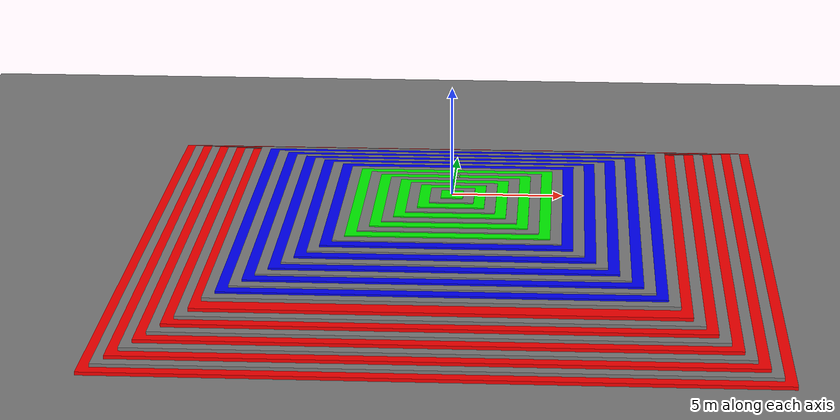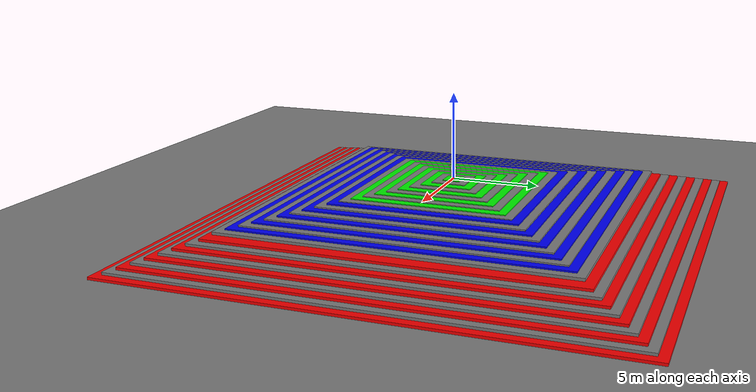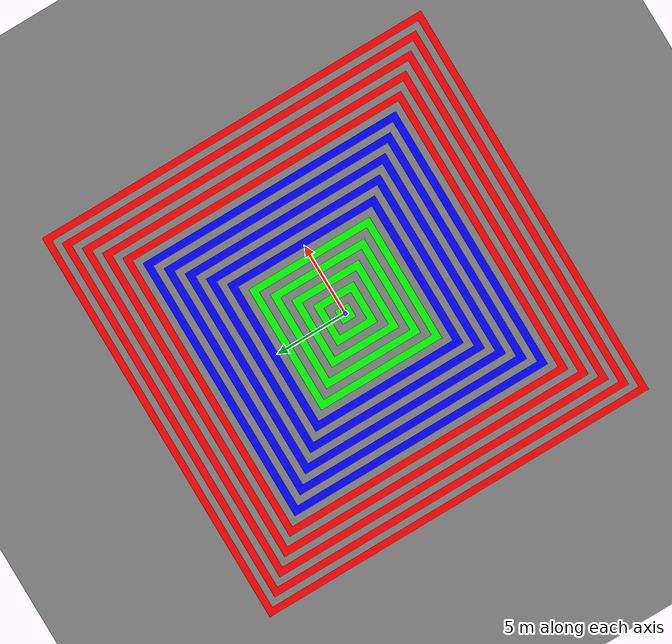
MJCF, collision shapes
<mujoco model="g1 scene modified">
  <include file="g1_12dof_modified.xml"/>

  <statistic center="1.0 0.7 1.0" extent="0.8"/>

  <visual>
    <headlight diffuse="0.6 0.6 0.6" ambient="0.1 0.1 0.1" specular="0.9 0.9 0.9"/>
    <rgba haze="0.15 0.25 0.35 1"/>
    <global azimuth="-140" elevation="-20"/>
  </visual>

  <asset>
    <texture type="skybox" builtin="flat" rgb1="0 0 0" rgb2="0 0 0" width="512" height="3072"/>
    <texture type="2d" name="groundplane" builtin="checker" mark="edge" rgb1="0.2 0.3 0.4" rgb2="0.1 0.2 0.3" markrgb="0.8 0.8 0.8" width="300" height="300"/>
    <material name="groundplane" texture="groundplane" texuniform="true" texrepeat="5 5" reflectance="0.2"/>

    <material name="color_stair_default" rgba="0.5 0.5 0.5 1"/>
    <material name="color_stair_simple" rgba="0.0 1.0 0.0 1"/>
    <material name="color_stair_medium" rgba="0.0 0.0 1.0 1"/>
    <material name="color_stair_hard" rgba="1.0 0.0 0.0 1"/>
  </asset>

  <worldbody>
    <light pos="1 0 3.5" dir="0 0 -1" directional="true"/>

    <geom type="box" size="0.5 0.5 0.05" pos="0 0 -0.05" euler="0 0 0" material="color_stair_simple" />
    <geom type="box" size="1.0 1.0 0.05" pos="0 0 -0.10" euler="0 0 0" material="color_stair_default" />
    <geom type="box" size="1.5 1.5 0.05" pos="0 0 -0.15" euler="0 0 0" material="color_stair_simple" />
    <geom type="box" size="2.0 2.0 0.05" pos="0 0 -0.20" euler="0 0 0" material="color_stair_default" />
    <geom type="box" size="2.5 2.5 0.05" pos="0 0 -0.25" euler="0 0 0" material="color_stair_simple" />
    <geom type="box" size="3.0 3.0 0.05" pos="0 0 -0.30" euler="0 0 0" material="color_stair_default" />
    <geom type="box" size="3.5 3.5 0.05" pos="0 0 -0.35" euler="0 0 0" material="color_stair_simple" />
    <geom type="box" size="4.0 4.0 0.05" pos="0 0 -0.40" euler="0 0 0" material="color_stair_default" />
    <geom type="box" size="4.5 4.5 0.05" pos="0 0 -0.45" euler="0 0 0" material="color_stair_simple" />
    <geom type="box" size="5.0 5.0 0.05" pos="0 0 -0.50" euler="0 0 0" material="color_stair_default" />
    <geom type="box" size="5.5 5.5 0.08" pos="0 0 -0.58" euler="0 0 0" material="color_stair_medium" />
    <geom type="box" size="6.0 6.0 0.08" pos="0 0 -0.66" euler="0 0 0" material="color_stair_default" />
    <geom type="box" size="6.5 6.5 0.08" pos="0 0 -0.74" euler="0 0 0" material="color_stair_medium" />
    <geom type="box" size="7.0 7.0 0.08" pos="0 0 -0.82" euler="0 0 0" material="color_stair_default" />
    <geom type="box" size="7.5 7.5 0.08" pos="0 0 -0.90" euler="0 0 0" material="color_stair_medium" />
    <geom type="box" size="8.0 8.0 0.08" pos="0 0 -0.98" euler="0 0 0" material="color_stair_default" />
    <geom type="box" size="8.5 8.5 0.08" pos="0 0 -1.06" euler="0 0 0" material="color_stair_medium" />
    <geom type="box" size="9.0 9.0 0.08" pos="0 0 -1.14" euler="0 0 0" material="color_stair_default" />
    <geom type="box" size="9.5 9.5 0.08" pos="0 0 -1.22" euler="0 0 0" material="color_stair_medium" />
    <geom type="box" size="10.0 10.0 0.08" pos="0 0 -1.30" euler="0 0 0" material="color_stair_default" />
    <geom type="box" size="10.5 10.5 0.15" pos="0 0 -1.65" euler="0 0 0" material="color_stair_hard" />
    <geom type="box" size="11.0 11.0 0.15" pos="0 0 -1.80" euler="0 0 0" material="color_stair_default" />
    <geom type="box" size="11.5 11.5 0.15" pos="0 0 -1.95" euler="0 0 0" material="color_stair_hard" />
    <geom type="box" size="12.0 12.0 0.15" pos="0 0 -2.10" euler="0 0 0" material="color_stair_default" />
    <geom type="box" size="12.5 12.5 0.15" pos="0 0 -2.25" euler="0 0 0" material="color_stair_hard" />
    <geom type="box" size="13.0 13.0 0.15" pos="0 0 -2.40" euler="0 0 0" material="color_stair_default" />
    <geom type="box" size="13.5 13.5 0.15" pos="0 0 -2.55" euler="0 0 0" material="color_stair_hard" />
    <geom type="box" size="14.0 14.0 0.15" pos="0 0 -2.70" euler="0 0 0" material="color_stair_default" />
    <geom type="box" size="14.5 14.5 0.15" pos="0 0 -2.85" euler="0 0 0" material="color_stair_hard" />
    <geom type="box" size="100.0 100.0 0.15" pos="0 0 -3.00" euler="0 0 0" material="color_stair_default" />
  </worldbody>
</mujoco>

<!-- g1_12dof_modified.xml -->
<mujoco model="g1_12dof_modified">
  <compiler angle="radian" meshdir="meshes/"/>

  <statistic meansize="0.144785" extent="1.23314" center="0.025392 2.0634e-05 -0.245975"/>
  <default>
    <joint damping="0.001" armature="0.01" frictionloss="0.1"/>
  </default>

  <asset>
    <mesh name="pelvis" file="pelvis.STL"/>
    <mesh name="pelvis_contour_link" file="pelvis_contour_link.STL"/>
    <mesh name="left_hip_pitch_link" file="left_hip_pitch_link.STL"/>
    <mesh name="left_hip_roll_link" file="left_hip_roll_link.STL"/>
    <mesh name="left_hip_yaw_link" file="left_hip_yaw_link.STL"/>
    <mesh name="left_knee_link" file="left_knee_link.STL"/>
    <mesh name="left_ankle_pitch_link" file="left_ankle_pitch_link.STL"/>
    <mesh name="left_ankle_roll_link" file="left_ankle_roll_link.STL"/>
    <mesh name="right_hip_pitch_link" file="right_hip_pitch_link.STL"/>
    <mesh name="right_hip_roll_link" file="right_hip_roll_link.STL"/>
    <mesh name="right_hip_yaw_link" file="right_hip_yaw_link.STL"/>
    <mesh name="right_knee_link" file="right_knee_link.STL"/>
    <mesh name="right_ankle_pitch_link" file="right_ankle_pitch_link.STL"/>
    <mesh name="right_ankle_roll_link" file="right_ankle_roll_link.STL"/>
    <mesh name="torso_link_23dof_rev_1_0" file="torso_link_23dof_rev_1_0.STL"/>
    <mesh name="logo_link" file="logo_link.STL"/>
    <mesh name="head_link" file="head_link.STL"/>
    <mesh name="left_shoulder_pitch_link" file="left_shoulder_pitch_link.STL"/>
    <mesh name="left_shoulder_roll_link" file="left_shoulder_roll_link.STL"/>
    <mesh name="left_shoulder_yaw_link" file="left_shoulder_yaw_link.STL"/>
    <mesh name="left_elbow_link" file="left_elbow_link.STL"/>
    <mesh name="left_wrist_roll_rubber_hand" file="left_wrist_roll_rubber_hand.STL"/>
    <mesh name="right_shoulder_pitch_link" file="right_shoulder_pitch_link.STL"/>
    <mesh name="right_shoulder_roll_link" file="right_shoulder_roll_link.STL"/>
    <mesh name="right_shoulder_yaw_link" file="right_shoulder_yaw_link.STL"/>
    <mesh name="right_elbow_link" file="right_elbow_link.STL"/>
    <mesh name="right_wrist_roll_rubber_hand" file="right_wrist_roll_rubber_hand.STL"/>
  </asset>

  <worldbody>
    <body name="pelvis" pos="0 0 0.793">
      <inertial pos="0.0144905 0.000151462 0.144068" quat="0.999881 -0.000505543 -0.0154276 0.000328408" mass="17.7349" diaginertia="0.552723 0.454092 0.211762"/>
      <joint name="floating_base_joint" type="free" limited="false" actuatorfrclimited="false"/>
      <geom type="mesh" contype="0" conaffinity="0" group="1" density="0" rgba="0.2 0.2 0.2 1" mesh="pelvis"/>
      <geom type="mesh" contype="0" conaffinity="0" group="1" density="0" rgba="0.7 0.7 0.7 1" mesh="pelvis_contour_link"/>
      <geom type="mesh" rgba="0.7 0.7 0.7 1" mesh="pelvis_contour_link"/>
      <geom type="mesh" contype="0" conaffinity="0" group="1" density="0" rgba="0.7 0.7 0.7 1" mesh="torso_link_23dof_rev_1_0"/>
      <geom type="mesh" rgba="0.7 0.7 0.7 1" mesh="torso_link_23dof_rev_1_0"/>
      <geom type="mesh" contype="0" conaffinity="0" group="1" density="0" rgba="0.2 0.2 0.2 1" mesh="logo_link"/>
      <geom type="mesh" rgba="0.2 0.2 0.2 1" mesh="logo_link"/>
      <geom type="mesh" contype="0" conaffinity="0" group="1" density="0" rgba="0.2 0.2 0.2 1" mesh="head_link"/>
      <geom type="mesh" rgba="0.2 0.2 0.2 1" mesh="head_link"/>
      <geom pos="-7.2e-06 0.10022 0.29178" quat="0.990264 0.139201 1.38722e-05 -9.86868e-05" type="mesh" contype="0" conaffinity="0" group="1" density="0" rgba="0.7 0.7 0.7 1" mesh="left_shoulder_pitch_link"/>
      <geom size="0.03 0.025" pos="7.72569e-07 0.141427 0.293195" quat="0.700213 0.0985001 0.700232 0.0983605" type="cylinder" rgba="0.7 0.7 0.7 1"/>
      <geom pos="3.73942e-07 0.14056 0.288961" quat="1 3.00026e-05 2.74716e-05 -9.57958e-05" type="mesh" contype="0" conaffinity="0" group="1" density="0" rgba="0.7 0.7 0.7 1" mesh="left_shoulder_roll_link"/>
      <geom size="0.03 0.015" pos="-0.00400139 0.146564 0.235962" quat="1 3.00026e-05 2.74716e-05 -9.57958e-05" type="cylinder" rgba="0.7 0.7 0.7 1"/>
      <geom pos="-4.10007e-06 0.146807 0.185762" quat="1 3.00026e-05 2.74716e-05 -9.57958e-05" type="mesh" contype="0" conaffinity="0" group="1" density="0" rgba="0.7 0.7 0.7 1" mesh="left_shoulder_yaw_link"/>
      <geom pos="-4.10007e-06 0.146807 0.185762" quat="1 3.00026e-05 2.74716e-05 -9.57958e-05" type="mesh" rgba="0.7 0.7 0.7 1" mesh="left_shoulder_yaw_link"/>
      <geom pos="0.0157745 0.146808 0.105243" quat="1 3.00026e-05 2.74716e-05 -9.57958e-05" type="mesh" contype="0" conaffinity="0" group="1" density="0" rgba="0.7 0.7 0.7 1" mesh="left_elbow_link"/>
      <geom pos="0.0157745 0.146808 0.105243" quat="1 3.00026e-05 2.74716e-05 -9.57958e-05" type="mesh" rgba="0.7 0.7 0.7 1" mesh="left_elbow_link"/>
      <geom pos="0.115774 0.148678 0.0952374" quat="1 3.00026e-05 2.74716e-05 -9.57958e-05" type="mesh" contype="0" conaffinity="0" group="1" density="0" rgba="0.7 0.7 0.7 1" mesh="left_wrist_roll_rubber_hand"/>
      <geom pos="0.115774 0.148678 0.0952374" quat="1 3.00026e-05 2.74716e-05 -9.57958e-05" type="mesh" rgba="0.7 0.7 0.7 1" mesh="left_wrist_roll_rubber_hand"/>
      <geom pos="-7.2e-06 -0.10021 0.29178" quat="0.990264 -0.139201 1.38722e-05 9.86868e-05" type="mesh" contype="0" conaffinity="0" group="1" density="0" rgba="0.7 0.7 0.7 1" mesh="right_shoulder_pitch_link"/>
      <geom size="0.03 0.025" pos="7.72569e-07 -0.141417 0.293195" quat="0.700213 -0.0985001 0.700232 -0.0983605" type="cylinder" rgba="0.7 0.7 0.7 1"/>
      <geom pos="3.73942e-07 -0.14055 0.288961" quat="1 -3.00026e-05 2.74716e-05 9.57958e-05" type="mesh" contype="0" conaffinity="0" group="1" density="0" rgba="0.7 0.7 0.7 1" mesh="right_shoulder_roll_link"/>
      <geom size="0.03 0.015" pos="-0.00400139 -0.146554 0.235962" quat="1 -3.00026e-05 2.74716e-05 9.57958e-05" type="cylinder" rgba="0.7 0.7 0.7 1"/>
      <geom pos="-4.10007e-06 -0.146797 0.185762" quat="1 -3.00026e-05 2.74716e-05 9.57958e-05" type="mesh" contype="0" conaffinity="0" group="1" density="0" rgba="0.7 0.7 0.7 1" mesh="right_shoulder_yaw_link"/>
      <geom pos="-4.10007e-06 -0.146797 0.185762" quat="1 -3.00026e-05 2.74716e-05 9.57958e-05" type="mesh" rgba="0.7 0.7 0.7 1" mesh="right_shoulder_yaw_link"/>
      <geom pos="0.0157745 -0.146798 0.105243" quat="1 -3.00026e-05 2.74716e-05 9.57958e-05" type="mesh" contype="0" conaffinity="0" group="1" density="0" rgba="0.7 0.7 0.7 1" mesh="right_elbow_link"/>
      <geom pos="0.0157745 -0.146798 0.105243" quat="1 -3.00026e-05 2.74716e-05 9.57958e-05" type="mesh" rgba="0.7 0.7 0.7 1" mesh="right_elbow_link"/>
      <geom pos="0.115774 -0.148668 0.0952374" quat="1 -3.00026e-05 2.74716e-05 9.57958e-05" type="mesh" contype="0" conaffinity="0" group="1" density="0" rgba="0.7 0.7 0.7 1" mesh="right_wrist_roll_rubber_hand"/>
      <geom pos="0.115774 -0.148668 0.0952374" quat="1 -3.00026e-05 2.74716e-05 9.57958e-05" type="mesh" rgba="0.7 0.7 0.7 1" mesh="right_wrist_roll_rubber_hand"/>
      <body name="left_hip_pitch_link" pos="0 0.064452 -0.1027">
        <inertial pos="0.002741 0.047791 -0.02606" quat="0.954862 0.293964 0.0302556 0.030122" mass="1.35" diaginertia="0.00181517 0.00153422 0.00116212"/>
        <joint name="left_hip_pitch_joint" pos="0 0 0" axis="0 1 0" range="-2.5307 2.8798" actuatorfrcrange="-88 88"/>
        <geom type="mesh" contype="0" conaffinity="0" group="1" density="0" rgba="0.2 0.2 0.2 1" mesh="left_hip_pitch_link"/>
        <geom type="mesh" rgba="0.2 0.2 0.2 1" mesh="left_hip_pitch_link"/>
        <body name="left_hip_roll_link" pos="0 0.052 -0.030465" quat="0.996179 0 -0.0873386 0">
          <inertial pos="0.029812 -0.001045 -0.087934" quat="0.977808 -1.97119e-05 0.205576 -0.0403793" mass="1.52" diaginertia="0.00254986 0.00241169 0.00148755"/>
          <joint name="left_hip_roll_joint" pos="0 0 0" axis="1 0 0" range="-0.5236 2.9671" actuatorfrcrange="-139 139"/>
          <geom type="mesh" contype="0" conaffinity="0" group="1" density="0" rgba="0.7 0.7 0.7 1" mesh="left_hip_roll_link"/>
          <geom type="mesh" rgba="0.7 0.7 0.7 1" mesh="left_hip_roll_link"/>
          <body name="left_hip_yaw_link" pos="0.025001 0 -0.12412">
            <inertial pos="-0.057709 -0.010981 -0.15078" quat="0.600598 0.15832 0.223482 0.751181" mass="1.702" diaginertia="0.00776166 0.00717575 0.00160139"/>
            <joint name="left_hip_yaw_joint" pos="0 0 0" axis="0 0 1" range="-2.7576 2.7576" actuatorfrcrange="-88 88"/>
            <geom type="mesh" contype="0" conaffinity="0" group="1" density="0" rgba="0.7 0.7 0.7 1" mesh="left_hip_yaw_link"/>
            <geom type="mesh" rgba="0.7 0.7 0.7 1" mesh="left_hip_yaw_link"/>
            <body name="left_knee_link" pos="-0.078273 0.0021489 -0.17734" quat="0.996179 0 0.0873386 0">
              <inertial pos="0.005457 0.003964 -0.12074" quat="0.923418 -0.0327699 0.0158246 0.382067" mass="1.932" diaginertia="0.0113804 0.0112778 0.00146458"/>
              <joint name="left_knee_joint" pos="0 0 0" axis="0 1 0" range="-0.087267 2.8798" actuatorfrcrange="-139 139"/>
              <geom type="mesh" contype="0" conaffinity="0" group="1" density="0" rgba="0.7 0.7 0.7 1" mesh="left_knee_link"/>
              <geom type="mesh" rgba="0.7 0.7 0.7 1" mesh="left_knee_link"/>
              <body name="left_ankle_pitch_link" pos="0 -9.4445e-05 -0.30001">
                <inertial pos="-0.007269 0 0.011137" quat="0.603053 0.369225 0.369225 0.603053" mass="0.074" diaginertia="1.89e-05 1.40805e-05 6.9195e-06"/>
                <joint name="left_ankle_pitch_joint" pos="0 0 0" axis="0 1 0" range="-0.87267 0.5236" actuatorfrcrange="-50 50"/>
                <geom type="mesh" contype="0" conaffinity="0" group="1" density="0" rgba="0.7 0.7 0.7 1" mesh="left_ankle_pitch_link"/>
                <geom type="mesh" rgba="0.7 0.7 0.7 1" mesh="left_ankle_pitch_link"/>
                <body name="left_ankle_roll_link" pos="0 0 -0.017558">
                  <inertial pos="0.026505 0 -0.016425" quat="-0.000481092 0.728482 -0.000618967 0.685065" mass="0.608" diaginertia="0.00167218 0.0016161 0.000217621"/>
                  <joint name="left_ankle_roll_joint" pos="0 0 0" axis="1 0 0" range="-0.2618 0.2618" actuatorfrcrange="-50 50"/>
                  <geom type="mesh" contype="0" conaffinity="0" group="1" density="0" rgba="0.2 0.2 0.2 1" mesh="left_ankle_roll_link"/>
                  <geom size="0.005" pos="-0.05 0.025 -0.03" rgba="0.2 0.2 0.2 1"/>
                  <geom size="0.005" pos="-0.05 -0.025 -0.03" rgba="0.2 0.2 0.2 1"/>
                  <geom size="0.005" pos="0.12 0.03 -0.03" rgba="0.2 0.2 0.2 1"/>
                  <geom size="0.005" pos="0.12 -0.03 -0.03" rgba="0.2 0.2 0.2 1"/>
                </body>
              </body>
            </body>
          </body>
        </body>
      </body>
      <body name="right_hip_pitch_link" pos="0 -0.064452 -0.1027">
        <inertial pos="0.002741 -0.047791 -0.02606" quat="0.954862 -0.293964 0.0302556 -0.030122" mass="1.35" diaginertia="0.00181517 0.00153422 0.00116212"/>
        <joint name="right_hip_pitch_joint" pos="0 0 0" axis="0 1 0" range="-2.5307 2.8798" actuatorfrcrange="-88 88"/>
        <geom type="mesh" contype="0" conaffinity="0" group="1" density="0" rgba="0.2 0.2 0.2 1" mesh="right_hip_pitch_link"/>
        <geom type="mesh" rgba="0.2 0.2 0.2 1" mesh="right_hip_pitch_link"/>
        <body name="right_hip_roll_link" pos="0 -0.052 -0.030465" quat="0.996179 0 -0.0873386 0">
          <inertial pos="0.029812 0.001045 -0.087934" quat="0.977808 1.97119e-05 0.205576 0.0403793" mass="1.52" diaginertia="0.00254986 0.00241169 0.00148755"/>
          <joint name="right_hip_roll_joint" pos="0 0 0" axis="1 0 0" range="-2.9671 0.5236" actuatorfrcrange="-139 139"/>
          <geom type="mesh" contype="0" conaffinity="0" group="1" density="0" rgba="0.7 0.7 0.7 1" mesh="right_hip_roll_link"/>
          <geom type="mesh" rgba="0.7 0.7 0.7 1" mesh="right_hip_roll_link"/>
          <body name="right_hip_yaw_link" pos="0.025001 0 -0.12412">
            <inertial pos="-0.057709 0.010981 -0.15078" quat="0.751181 0.223482 0.15832 0.600598" mass="1.702" diaginertia="0.00776166 0.00717575 0.00160139"/>
            <joint name="right_hip_yaw_joint" pos="0 0 0" axis="0 0 1" range="-2.7576 2.7576" actuatorfrcrange="-88 88"/>
            <geom type="mesh" contype="0" conaffinity="0" group="1" density="0" rgba="0.7 0.7 0.7 1" mesh="right_hip_yaw_link"/>
            <geom type="mesh" rgba="0.7 0.7 0.7 1" mesh="right_hip_yaw_link"/>
            <body name="right_knee_link" pos="-0.078273 -0.0021489 -0.17734" quat="0.996179 0 0.0873386 0">
              <inertial pos="0.005457 -0.003964 -0.12074" quat="0.923439 0.0345276 0.0116333 -0.382012" mass="1.932" diaginertia="0.011374 0.0112843 0.00146452"/>
              <joint name="right_knee_joint" pos="0 0 0" axis="0 1 0" range="-0.087267 2.8798" actuatorfrcrange="-139 139"/>
              <geom type="mesh" contype="0" conaffinity="0" group="1" density="0" rgba="0.7 0.7 0.7 1" mesh="right_knee_link"/>
              <geom type="mesh" rgba="0.7 0.7 0.7 1" mesh="right_knee_link"/>
              <body name="right_ankle_pitch_link" pos="0 9.4445e-05 -0.30001">
                <inertial pos="-0.007269 0 0.011137" quat="0.603053 0.369225 0.369225 0.603053" mass="0.074" diaginertia="1.89e-05 1.40805e-05 6.9195e-06"/>
                <joint name="right_ankle_pitch_joint" pos="0 0 0" axis="0 1 0" range="-0.87267 0.5236" actuatorfrcrange="-50 50"/>
                <geom type="mesh" contype="0" conaffinity="0" group="1" density="0" rgba="0.7 0.7 0.7 1" mesh="right_ankle_pitch_link"/>
                <geom type="mesh" rgba="0.7 0.7 0.7 1" mesh="right_ankle_pitch_link"/>
                <body name="right_ankle_roll_link" pos="0 0 -0.017558">
                  <inertial pos="0.026505 0 -0.016425" quat="0.000481092 0.728482 0.000618967 0.685065" mass="0.608" diaginertia="0.00167218 0.0016161 0.000217621"/>
                  <joint name="right_ankle_roll_joint" pos="0 0 0" axis="1 0 0" range="-0.2618 0.2618" actuatorfrcrange="-50 50"/>
                  <geom type="mesh" contype="0" conaffinity="0" group="1" density="0" rgba="0.2 0.2 0.2 1" mesh="right_ankle_roll_link"/>
                  <geom size="0.005" pos="-0.05 0.025 -0.03" rgba="0.2 0.2 0.2 1"/>
                  <geom size="0.005" pos="-0.05 -0.025 -0.03" rgba="0.2 0.2 0.2 1"/>
                  <geom size="0.005" pos="0.12 0.03 -0.03" rgba="0.2 0.2 0.2 1"/>
                  <geom size="0.005" pos="0.12 -0.03 -0.03" rgba="0.2 0.2 0.2 1"/>
                </body>
              </body>
            </body>
          </body>
        </body>
      </body>
    </body>
  </worldbody>
  <actuator>
    <motor name="left_hip_pitch_joint" joint="left_hip_pitch_joint"/>
    <motor name="left_hip_roll_joint" joint="left_hip_roll_joint"/>
    <motor name="left_hip_yaw_joint" joint="left_hip_yaw_joint"/>
    <motor name="left_knee_joint" joint="left_knee_joint"/>
    <motor name="left_ankle_pitch_joint" joint="left_ankle_pitch_joint"/>
    <motor name="left_ankle_roll_joint" joint="left_ankle_roll_joint"/>
    <motor name="right_hip_pitch_joint" joint="right_hip_pitch_joint"/>
    <motor name="right_hip_roll_joint" joint="right_hip_roll_joint"/>
    <motor name="right_hip_yaw_joint" joint="right_hip_yaw_joint"/>
    <motor name="right_knee_joint" joint="right_knee_joint"/>
    <motor name="right_ankle_pitch_joint" joint="right_ankle_pitch_joint"/>
    <motor name="right_ankle_roll_joint" joint="right_ankle_roll_joint"/>
  </actuator>
</mujoco>
